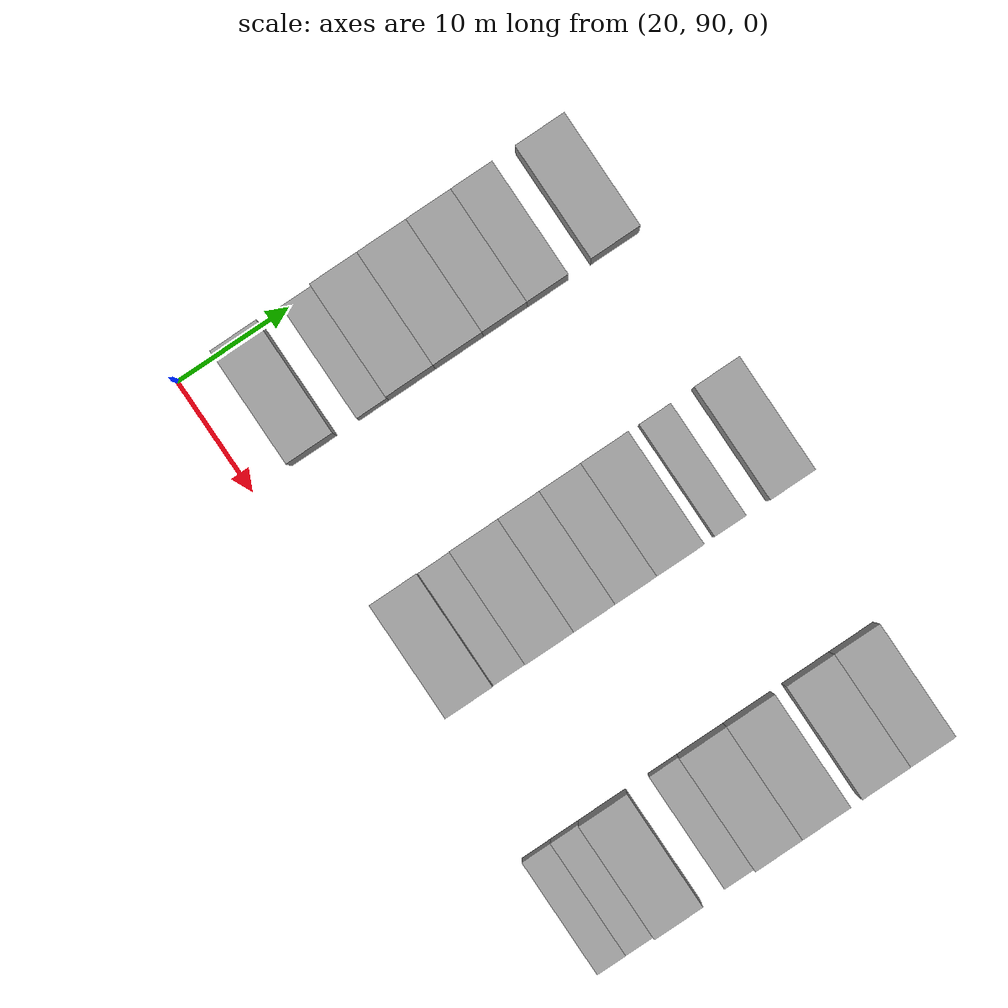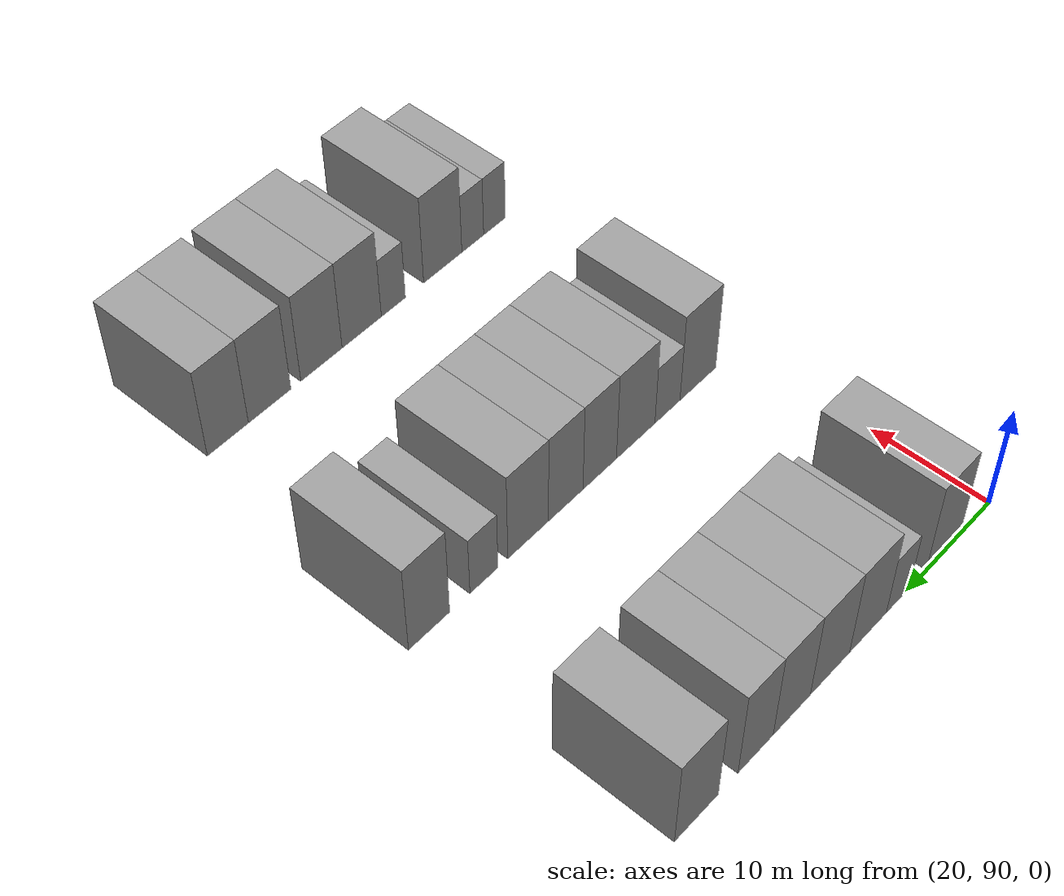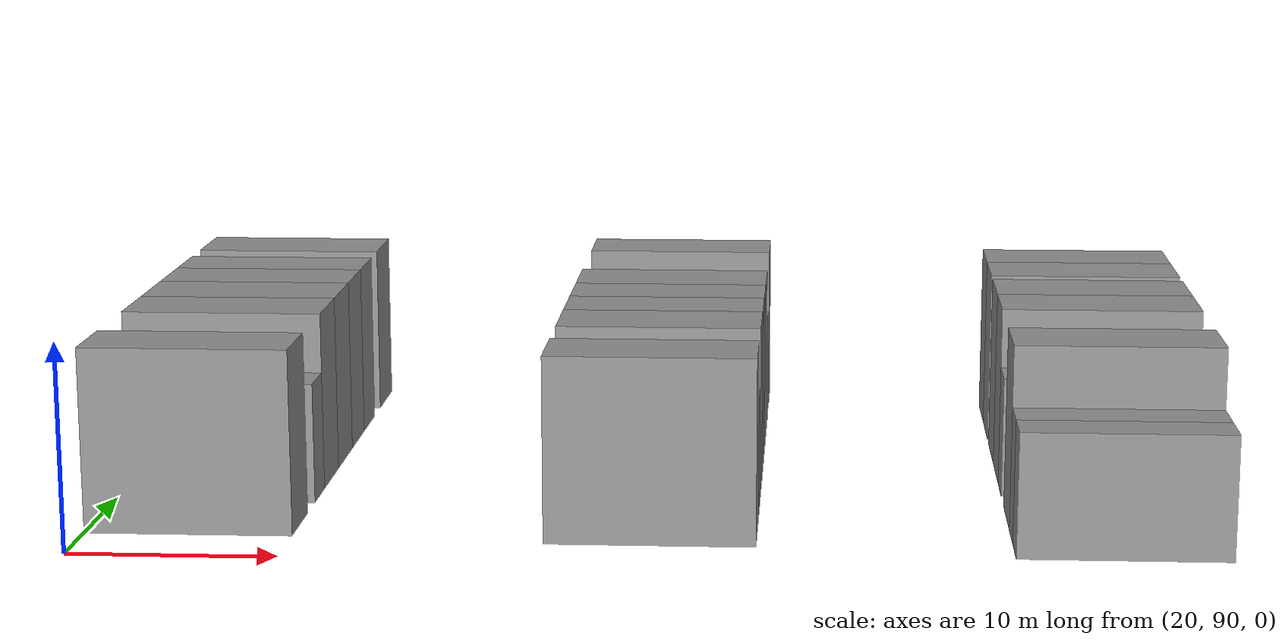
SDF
<sdf version="1.6">
 <world name="default">
  <model name="building_85">
   <static>1</static>
   <pose>25.0000 95.5912 0 0.000000 0.000000 0.000000</pose>
   <link name="link">
    <pose>0 0 4.50 0 0 0</pose>
    <collision name="collision"><geometry><box><size>10.0000 4.1032 9.0000</size></box></geometry></collision>
    <visual name="visual">
     <cast_shadows>0</cast_shadows>
     <geometry><box><size>10.0000 4.1032 9.0000</size></box></geometry>
     <material>
      <script>
       <uri>model://grey_wall/materials/scripts</uri>
       <uri>model://grey_wall/materials/textures</uri>
       <name>vrc/grey_wall</name>
      </script>
     </material>
    </visual>
   </link>
  </model>
  <model name="building_86">
   <static>1</static>
   <pose>25.0000 100.9893 0 0.000000 0.000000 0.000000</pose>
   <link name="link">
    <pose>0 0 3.00 0 0 0</pose>
    <collision name="collision"><geometry><box><size>10.0000 2.6930 6.0000</size></box></geometry></collision>
    <visual name="visual">
     <cast_shadows>0</cast_shadows>
     <geometry><box><size>10.0000 2.6930 6.0000</size></box></geometry>
     <material>
      <script>
       <uri>model://grey_wall/materials/scripts</uri>
       <uri>model://grey_wall/materials/textures</uri>
       <name>vrc/grey_wall</name>
      </script>
     </material>
    </visual>
   </link>
  </model>
  <model name="building_87">
   <static>1</static>
   <pose>25.0000 104.4273 0 0.000000 0.000000 0.000000</pose>
   <link name="link">
    <pose>0 0 4.50 0 0 0</pose>
    <collision name="collision"><geometry><box><size>10.0000 4.1829 9.0000</size></box></geometry></collision>
    <visual name="visual">
     <cast_shadows>0</cast_shadows>
     <geometry><box><size>10.0000 4.1829 9.0000</size></box></geometry>
     <material>
      <script>
       <uri>model://grey_wall/materials/scripts</uri>
       <uri>model://grey_wall/materials/textures</uri>
       <name>vrc/grey_wall</name>
      </script>
     </material>
    </visual>
   </link>
  </model>
  <model name="building_88">
   <static>1</static>
   <pose>25.0000 108.6854 0 0.000000 0.000000 0.000000</pose>
   <link name="link">
    <pose>0 0 4.50 0 0 0</pose>
    <collision name="collision"><geometry><box><size>10.0000 4.3335 9.0000</size></box></geometry></collision>
    <visual name="visual">
     <cast_shadows>0</cast_shadows>
     <geometry><box><size>10.0000 4.3335 9.0000</size></box></geometry>
     <material>
      <script>
       <uri>model://grey_wall/materials/scripts</uri>
       <uri>model://grey_wall/materials/textures</uri>
       <name>vrc/grey_wall</name>
      </script>
     </material>
    </visual>
   </link>
  </model>
  <model name="building_89">
   <static>1</static>
   <pose>25.0000 112.8372 0 0.000000 0.000000 0.000000</pose>
   <link name="link">
    <pose>0 0 4.50 0 0 0</pose>
    <collision name="collision"><geometry><box><size>10.0000 3.9700 9.0000</size></box></geometry></collision>
    <visual name="visual">
     <cast_shadows>0</cast_shadows>
     <geometry><box><size>10.0000 3.9700 9.0000</size></box></geometry>
     <material>
      <script>
       <uri>model://grey_wall/materials/scripts</uri>
       <uri>model://grey_wall/materials/textures</uri>
       <name>vrc/grey_wall</name>
      </script>
     </material>
    </visual>
   </link>
  </model>
  <model name="building_90">
   <static>1</static>
   <pose>25.0000 116.6541 0 0.000000 0.000000 0.000000</pose>
   <link name="link">
    <pose>0 0 4.50 0 0 0</pose>
    <collision name="collision"><geometry><box><size>10.0000 3.6637 9.0000</size></box></geometry></collision>
    <visual name="visual">
     <cast_shadows>0</cast_shadows>
     <geometry><box><size>10.0000 3.6637 9.0000</size></box></geometry>
     <material>
      <script>
       <uri>model://grey_wall/materials/scripts</uri>
       <uri>model://grey_wall/materials/textures</uri>
       <name>vrc/grey_wall</name>
      </script>
     </material>
    </visual>
   </link>
  </model>
  <model name="building_91">
   <static>1</static>
   <pose>25.0000 122.6757 0 0.000000 0.000000 0.000000</pose>
   <link name="link">
    <pose>0 0 4.50 0 0 0</pose>
    <collision name="collision"><geometry><box><size>10.0000 4.3796 9.0000</size></box></geometry></collision>
    <visual name="visual">
     <cast_shadows>0</cast_shadows>
     <geometry><box><size>10.0000 4.3796 9.0000</size></box></geometry>
     <material>
      <script>
       <uri>model://grey_wall/materials/scripts</uri>
       <uri>model://grey_wall/materials/textures</uri>
       <name>vrc/grey_wall</name>
      </script>
     </material>
    </visual>
   </link>
  </model>
  <model name="building_209">
   <static>1</static>
   <pose>47.0000 94.9020 0 0.000000 0.000000 0.000000</pose>
   <link name="link">
    <pose>0 0 4.50 0 0 0</pose>
    <collision name="collision"><geometry><box><size>10.0000 4.1925 9.0000</size></box></geometry></collision>
    <visual name="visual">
     <cast_shadows>0</cast_shadows>
     <geometry><box><size>10.0000 4.1925 9.0000</size></box></geometry>
     <material>
      <script>
       <uri>model://grey_wall/materials/scripts</uri>
       <uri>model://grey_wall/materials/textures</uri>
       <name>vrc/grey_wall</name>
      </script>
     </material>
    </visual>
   </link>
  </model>
  <model name="building_210">
   <static>1</static>
   <pose>47.0000 98.4341 0 0.000000 0.000000 0.000000</pose>
   <link name="link">
    <pose>0 0 3.00 0 0 0</pose>
    <collision name="collision"><geometry><box><size>10.0000 2.8716 6.0000</size></box></geometry></collision>
    <visual name="visual">
     <cast_shadows>0</cast_shadows>
     <geometry><box><size>10.0000 2.8716 6.0000</size></box></geometry>
     <material>
      <script>
       <uri>model://grey_wall/materials/scripts</uri>
       <uri>model://grey_wall/materials/textures</uri>
       <name>vrc/grey_wall</name>
      </script>
     </material>
    </visual>
   </link>
  </model>
  <model name="building_211">
   <static>1</static>
   <pose>47.0000 102.0206 0 0.000000 0.000000 0.000000</pose>
   <link name="link">
    <pose>0 0 4.50 0 0 0</pose>
    <collision name="collision"><geometry><box><size>10.0000 4.3014 9.0000</size></box></geometry></collision>
    <visual name="visual">
     <cast_shadows>0</cast_shadows>
     <geometry><box><size>10.0000 4.3014 9.0000</size></box></geometry>
     <material>
      <script>
       <uri>model://grey_wall/materials/scripts</uri>
       <uri>model://grey_wall/materials/textures</uri>
       <name>vrc/grey_wall</name>
      </script>
     </material>
    </visual>
   </link>
  </model>
  <model name="building_212">
   <static>1</static>
   <pose>47.0000 105.9963 0 0.000000 0.000000 0.000000</pose>
   <link name="link">
    <pose>0 0 4.50 0 0 0</pose>
    <collision name="collision"><geometry><box><size>10.0000 3.6499 9.0000</size></box></geometry></collision>
    <visual name="visual">
     <cast_shadows>0</cast_shadows>
     <geometry><box><size>10.0000 3.6499 9.0000</size></box></geometry>
     <material>
      <script>
       <uri>model://grey_wall/materials/scripts</uri>
       <uri>model://grey_wall/materials/textures</uri>
       <name>vrc/grey_wall</name>
      </script>
     </material>
    </visual>
   </link>
  </model>
  <model name="building_213">
   <static>1</static>
   <pose>47.0000 109.6597 0 0.000000 0.000000 0.000000</pose>
   <link name="link">
    <pose>0 0 4.50 0 0 0</pose>
    <collision name="collision"><geometry><box><size>10.0000 3.6769 9.0000</size></box></geometry></collision>
    <visual name="visual">
     <cast_shadows>0</cast_shadows>
     <geometry><box><size>10.0000 3.6769 9.0000</size></box></geometry>
     <material>
      <script>
       <uri>model://grey_wall/materials/scripts</uri>
       <uri>model://grey_wall/materials/textures</uri>
       <name>vrc/grey_wall</name>
      </script>
     </material>
    </visual>
   </link>
  </model>
  <model name="building_214">
   <static>1</static>
   <pose>47.0000 113.6049 0 0.000000 0.000000 0.000000</pose>
   <link name="link">
    <pose>0 0 4.50 0 0 0</pose>
    <collision name="collision"><geometry><box><size>10.0000 4.2136 9.0000</size></box></geometry></collision>
    <visual name="visual">
     <cast_shadows>0</cast_shadows>
     <geometry><box><size>10.0000 4.2136 9.0000</size></box></geometry>
     <material>
      <script>
       <uri>model://grey_wall/materials/scripts</uri>
       <uri>model://grey_wall/materials/textures</uri>
       <name>vrc/grey_wall</name>
      </script>
     </material>
    </visual>
   </link>
  </model>
  <model name="building_215">
   <static>1</static>
   <pose>47.0000 118.1214 0 0.000000 0.000000 0.000000</pose>
   <link name="link">
    <pose>0 0 3.00 0 0 0</pose>
    <collision name="collision"><geometry><box><size>10.0000 2.8193 6.0000</size></box></geometry></collision>
    <visual name="visual">
     <cast_shadows>0</cast_shadows>
     <geometry><box><size>10.0000 2.8193 6.0000</size></box></geometry>
     <material>
      <script>
       <uri>model://grey_wall/materials/scripts</uri>
       <uri>model://grey_wall/materials/textures</uri>
       <name>vrc/grey_wall</name>
      </script>
     </material>
    </visual>
   </link>
  </model>
  <model name="building_216">
   <static>1</static>
   <pose>47.0000 123.5318 0 0.000000 0.000000 0.000000</pose>
   <link name="link">
    <pose>0 0 4.50 0 0 0</pose>
    <collision name="collision"><geometry><box><size>10.0000 4.0014 9.0000</size></box></geometry></collision>
    <visual name="visual">
     <cast_shadows>0</cast_shadows>
     <geometry><box><size>10.0000 4.0014 9.0000</size></box></geometry>
     <material>
      <script>
       <uri>model://grey_wall/materials/scripts</uri>
       <uri>model://grey_wall/materials/textures</uri>
       <name>vrc/grey_wall</name>
      </script>
     </material>
    </visual>
   </link>
  </model>
  <model name="building_330">
   <static>1</static>
   <pose>69.0000 92.7186 0 0.000000 0.000000 0.000000</pose>
   <link name="link">
    <pose>0 0 3.00 0 0 0</pose>
    <collision name="collision"><geometry><box><size>10.0000 2.5269 6.0000</size></box></geometry></collision>
    <visual name="visual">
     <cast_shadows>0</cast_shadows>
     <geometry><box><size>10.0000 2.5269 6.0000</size></box></geometry>
     <material>
      <script>
       <uri>model://grey_wall/materials/scripts</uri>
       <uri>model://grey_wall/materials/textures</uri>
       <name>vrc/grey_wall</name>
      </script>
     </material>
    </visual>
   </link>
  </model>
  <model name="building_331">
   <static>1</static>
   <pose>69.0000 95.2323 0 0.000000 0.000000 0.000000</pose>
   <link name="link">
    <pose>0 0 3.00 0 0 0</pose>
    <collision name="collision"><geometry><box><size>10.0000 2.5004 6.0000</size></box></geometry></collision>
    <visual name="visual">
     <cast_shadows>0</cast_shadows>
     <geometry><box><size>10.0000 2.5004 6.0000</size></box></geometry>
     <material>
      <script>
       <uri>model://grey_wall/materials/scripts</uri>
       <uri>model://grey_wall/materials/textures</uri>
       <name>vrc/grey_wall</name>
      </script>
     </material>
    </visual>
   </link>
  </model>
  <model name="building_332">
   <static>1</static>
   <pose>69.0000 98.6297 0 0.000000 0.000000 0.000000</pose>
   <link name="link">
    <pose>0 0 4.50 0 0 0</pose>
    <collision name="collision"><geometry><box><size>10.0000 4.2944 9.0000</size></box></geometry></collision>
    <visual name="visual">
     <cast_shadows>0</cast_shadows>
     <geometry><box><size>10.0000 4.2944 9.0000</size></box></geometry>
     <material>
      <script>
       <uri>model://grey_wall/materials/scripts</uri>
       <uri>model://grey_wall/materials/textures</uri>
       <name>vrc/grey_wall</name>
      </script>
     </material>
    </visual>
   </link>
  </model>
  <model name="building_333">
   <static>1</static>
   <pose>69.0000 104.0850 0 0.000000 0.000000 0.000000</pose>
   <link name="link">
    <pose>0 0 3.00 0 0 0</pose>
    <collision name="collision"><geometry><box><size>10.0000 2.6162 6.0000</size></box></geometry></collision>
    <visual name="visual">
     <cast_shadows>0</cast_shadows>
     <geometry><box><size>10.0000 2.6162 6.0000</size></box></geometry>
     <material>
      <script>
       <uri>model://grey_wall/materials/scripts</uri>
       <uri>model://grey_wall/materials/textures</uri>
       <name>vrc/grey_wall</name>
      </script>
     </material>
    </visual>
   </link>
  </model>
  <model name="building_334">
   <static>1</static>
   <pose>69.0000 107.4812 0 0.000000 0.000000 0.000000</pose>
   <link name="link">
    <pose>0 0 4.50 0 0 0</pose>
    <collision name="collision"><geometry><box><size>10.0000 4.1763 9.0000</size></box></geometry></collision>
    <visual name="visual">
     <cast_shadows>0</cast_shadows>
     <geometry><box><size>10.0000 4.1763 9.0000</size></box></geometry>
     <material>
      <script>
       <uri>model://grey_wall/materials/scripts</uri>
       <uri>model://grey_wall/materials/textures</uri>
       <name>vrc/grey_wall</name>
      </script>
     </material>
    </visual>
   </link>
  </model>
  <model name="building_335">
   <static>1</static>
   <pose>69.0000 111.7121 0 0.000000 0.000000 0.000000</pose>
   <link name="link">
    <pose>0 0 4.50 0 0 0</pose>
    <collision name="collision"><geometry><box><size>10.0000 4.2855 9.0000</size></box></geometry></collision>
    <visual name="visual">
     <cast_shadows>0</cast_shadows>
     <geometry><box><size>10.0000 4.2855 9.0000</size></box></geometry>
     <material>
      <script>
       <uri>model://grey_wall/materials/scripts</uri>
       <uri>model://grey_wall/materials/textures</uri>
       <name>vrc/grey_wall</name>
      </script>
     </material>
    </visual>
   </link>
  </model>
  <model name="building_336">
   <static>1</static>
   <pose>69.0000 116.9866 0 0.000000 0.000000 0.000000</pose>
   <link name="link">
    <pose>0 0 4.50 0 0 0</pose>
    <collision name="collision"><geometry><box><size>10.0000 4.2634 9.0000</size></box></geometry></collision>
    <visual name="visual">
     <cast_shadows>0</cast_shadows>
     <geometry><box><size>10.0000 4.2634 9.0000</size></box></geometry>
     <material>
      <script>
       <uri>model://grey_wall/materials/scripts</uri>
       <uri>model://grey_wall/materials/textures</uri>
       <name>vrc/grey_wall</name>
      </script>
     </material>
    </visual>
   </link>
  </model>
  <model name="building_337">
   <static>1</static>
   <pose>69.0000 121.1238 0 0.000000 0.000000 0.000000</pose>
   <link name="link">
    <pose>0 0 4.50 0 0 0</pose>
    <collision name="collision"><geometry><box><size>10.0000 4.0110 9.0000</size></box></geometry></collision>
    <visual name="visual">
     <cast_shadows>0</cast_shadows>
     <geometry><box><size>10.0000 4.0110 9.0000</size></box></geometry>
     <material>
      <script>
       <uri>model://grey_wall/materials/scripts</uri>
       <uri>model://grey_wall/materials/textures</uri>
       <name>vrc/grey_wall</name>
      </script>
     </material>
    </visual>
   </link>
  </model>
 </world>
</sdf>
